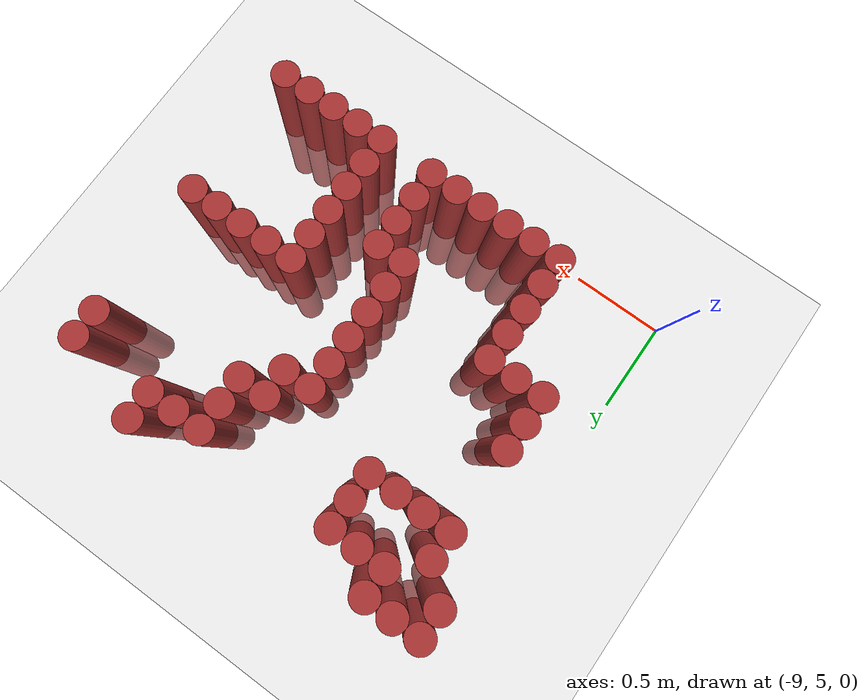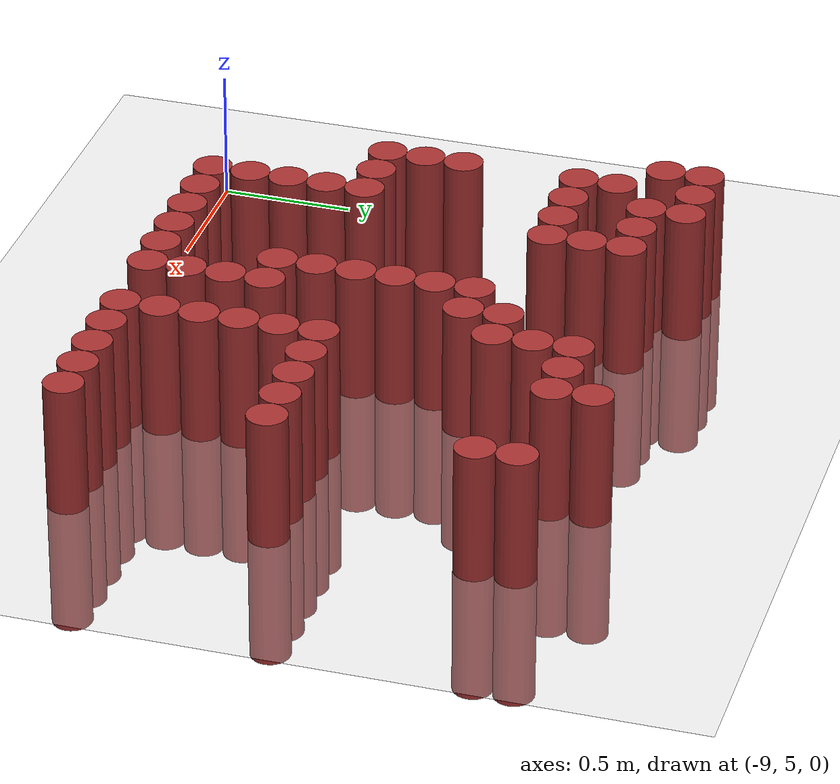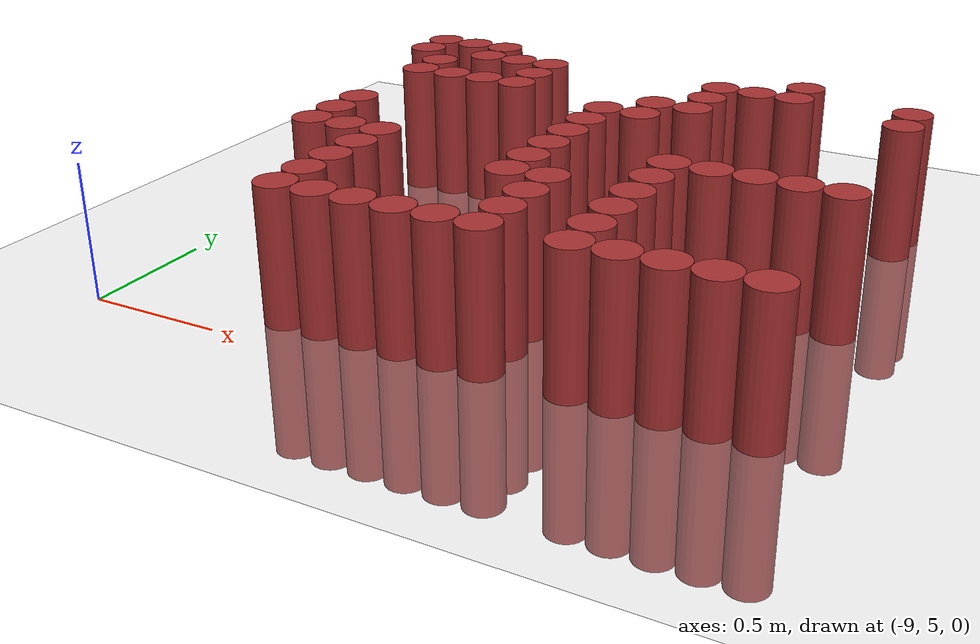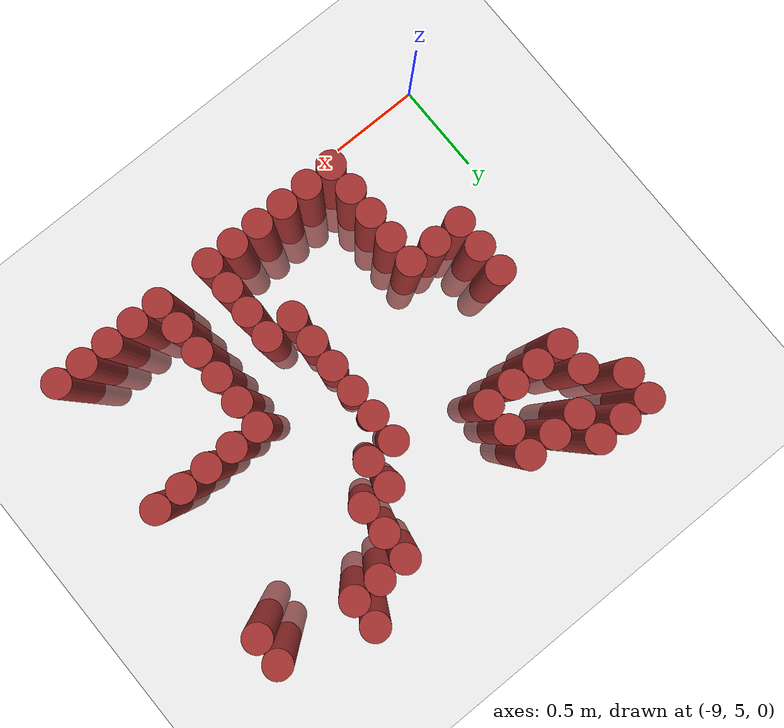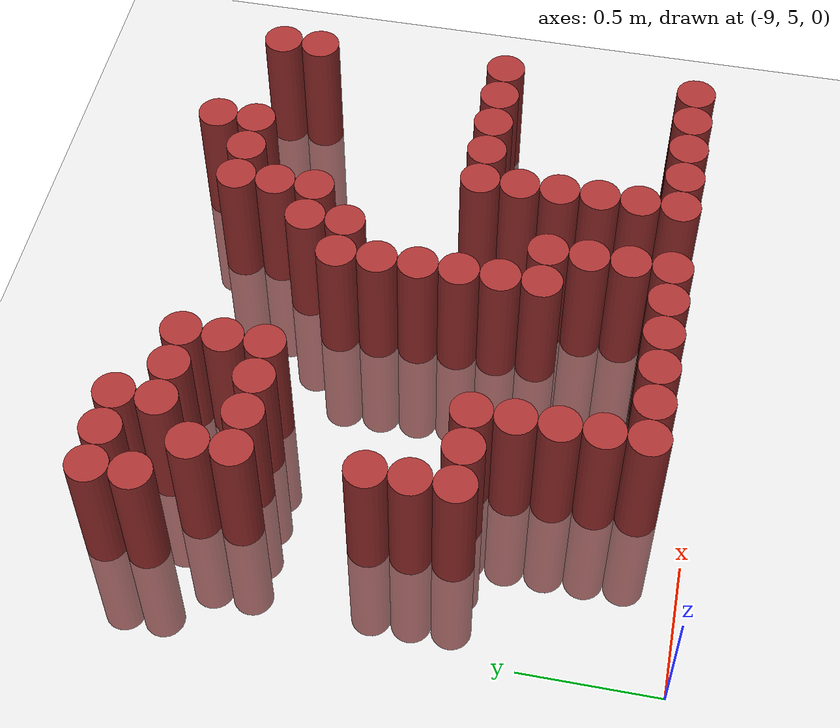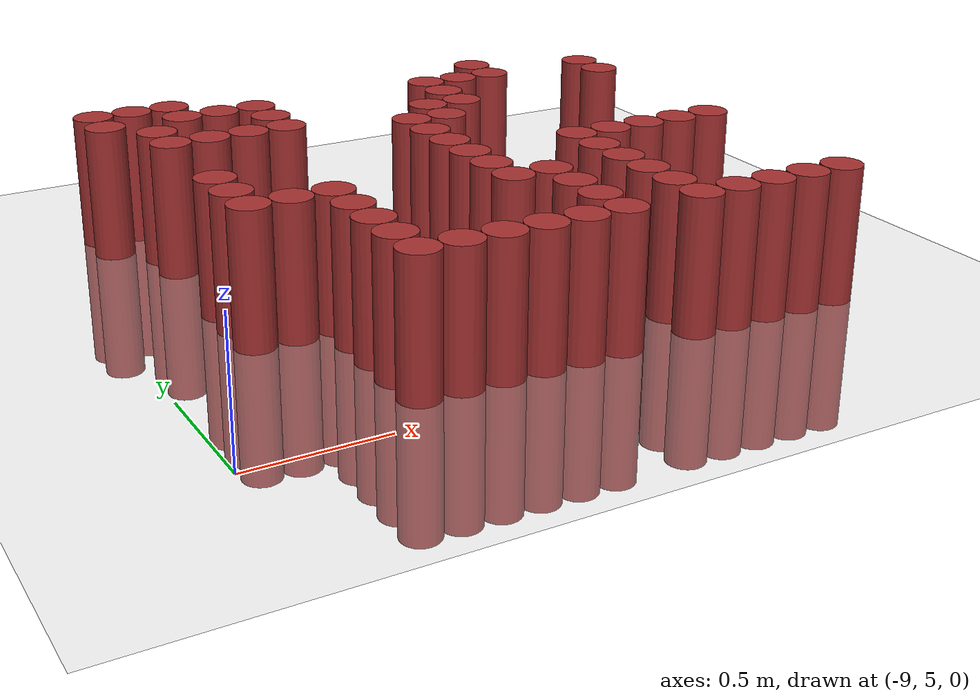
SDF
<sdf version="1.6">
 <world name="default">
  <model name="ground_plane">
   <static>1</static>
   <link name="link">
    <collision name="collision">
     <geometry><plane><normal>0 0 1</normal><size>100 100</size></plane></geometry>
     <surface><friction><ode><mu>100</mu><mu2>50</mu2></ode></friction></surface>
    </collision>
    <visual name="visual">
     <cast_shadows>0</cast_shadows>
     <geometry><plane><normal>0 0 1</normal><size>100 100</size></plane></geometry>
     <material>
      <script><uri>file://media/materials/scripts/gazebo.material</uri><name>Gazebo/Grey</name></script>
     </material>
    </visual>
   </link>
  </model>
  <model name="unit_cylinder_537">
   <static>1</static>
   <pose>-8.775 6.825 0 0 -0 0</pose>
   <link name="link">
    <inertial>
     <mass>1</mass>
     <inertia><ixx>0.145833</ixx><ixy>0</ixy><ixz>0</ixz><iyy>0.145833</iyy><iyz>0</iyz><izz>0.125</izz></inertia>
    </inertial>
    <collision name="collision">
     <geometry><cylinder><radius>0.075</radius><length>1</length></cylinder></geometry>
    </collision>
    <visual name="visual">
     <geometry><cylinder><radius>0.075</radius><length>1</length></cylinder></geometry>
     <material><ambient>0.648 0.192 0.192 1</ambient><diffuse>0.648 0.192 0.192 1</diffuse></material>
     <material>
      <script><name>Gazebo/Grey</name><uri>file://media/materials/scripts/gazebo.material</uri></script>
     </material>
    </visual>
   </link>
  </model>
  <model name="unit_cylinder_538">
   <static>1</static>
   <pose>-8.775 6.975 0 0 -0 0</pose>
   <link name="link">
    <inertial>
     <mass>1</mass>
     <inertia><ixx>0.145833</ixx><ixy>0</ixy><ixz>0</ixz><iyy>0.145833</iyy><iyz>0</iyz><izz>0.125</izz></inertia>
    </inertial>
    <collision name="collision">
     <geometry><cylinder><radius>0.075</radius><length>1</length></cylinder></geometry>
    </collision>
    <visual name="visual">
     <geometry><cylinder><radius>0.075</radius><length>1</length></cylinder></geometry>
     <material><ambient>0.648 0.192 0.192 1</ambient><diffuse>0.648 0.192 0.192 1</diffuse></material>
     <material>
      <script><name>Gazebo/Grey</name><uri>file://media/materials/scripts/gazebo.material</uri></script>
     </material>
    </visual>
   </link>
  </model>
  <model name="unit_cylinder_556">
   <static>1</static>
   <pose>-8.625 5.775 0 0 -0 0</pose>
   <link name="link">
    <inertial>
     <mass>1</mass>
     <inertia><ixx>0.145833</ixx><ixy>0</ixy><ixz>0</ixz><iyy>0.145833</iyy><iyz>0</iyz><izz>0.125</izz></inertia>
    </inertial>
    <collision name="collision">
     <geometry><cylinder><radius>0.075</radius><length>1</length></cylinder></geometry>
    </collision>
    <visual name="visual">
     <geometry><cylinder><radius>0.075</radius><length>1</length></cylinder></geometry>
     <material><ambient>0.648 0.192 0.192 1</ambient><diffuse>0.648 0.192 0.192 1</diffuse></material>
     <material>
      <script><name>Gazebo/Grey</name><uri>file://media/materials/scripts/gazebo.material</uri></script>
     </material>
    </visual>
   </link>
  </model>
  <model name="unit_cylinder_557">
   <static>1</static>
   <pose>-8.625 5.925 0 0 -0 0</pose>
   <link name="link">
    <inertial>
     <mass>1</mass>
     <inertia><ixx>0.145833</ixx><ixy>0</ixy><ixz>0</ixz><iyy>0.145833</iyy><iyz>0</iyz><izz>0.125</izz></inertia>
    </inertial>
    <collision name="collision">
     <geometry><cylinder><radius>0.075</radius><length>1</length></cylinder></geometry>
    </collision>
    <visual name="visual">
     <geometry><cylinder><radius>0.075</radius><length>1</length></cylinder></geometry>
     <material><ambient>0.648 0.192 0.192 1</ambient><diffuse>0.648 0.192 0.192 1</diffuse></material>
     <material>
      <script><name>Gazebo/Grey</name><uri>file://media/materials/scripts/gazebo.material</uri></script>
     </material>
    </visual>
   </link>
  </model>
  <model name="unit_cylinder_558">
   <static>1</static>
   <pose>-8.625 6.075 0 0 -0 0</pose>
   <link name="link">
    <inertial>
     <mass>1</mass>
     <inertia><ixx>0.145833</ixx><ixy>0</ixy><ixz>0</ixz><iyy>0.145833</iyy><iyz>0</iyz><izz>0.125</izz></inertia>
    </inertial>
    <collision name="collision">
     <geometry><cylinder><radius>0.075</radius><length>1</length></cylinder></geometry>
    </collision>
    <visual name="visual">
     <geometry><cylinder><radius>0.075</radius><length>1</length></cylinder></geometry>
     <material><ambient>0.648 0.192 0.192 1</ambient><diffuse>0.648 0.192 0.192 1</diffuse></material>
     <material>
      <script><name>Gazebo/Grey</name><uri>file://media/materials/scripts/gazebo.material</uri></script>
     </material>
    </visual>
   </link>
  </model>
  <model name="unit_cylinder_559">
   <static>1</static>
   <pose>-8.625 6.525 0 0 -0 0</pose>
   <link name="link">
    <inertial>
     <mass>1</mass>
     <inertia><ixx>0.145833</ixx><ixy>0</ixy><ixz>0</ixz><iyy>0.145833</iyy><iyz>0</iyz><izz>0.125</izz></inertia>
    </inertial>
    <collision name="collision">
     <geometry><cylinder><radius>0.075</radius><length>1</length></cylinder></geometry>
    </collision>
    <visual name="visual">
     <geometry><cylinder><radius>0.075</radius><length>1</length></cylinder></geometry>
     <material><ambient>0.648 0.192 0.192 1</ambient><diffuse>0.648 0.192 0.192 1</diffuse></material>
     <material>
      <script><name>Gazebo/Grey</name><uri>file://media/materials/scripts/gazebo.material</uri></script>
     </material>
    </visual>
   </link>
  </model>
  <model name="unit_cylinder_560">
   <static>1</static>
   <pose>-8.625 6.675 0 0 -0 0</pose>
   <link name="link">
    <inertial>
     <mass>1</mass>
     <inertia><ixx>0.145833</ixx><ixy>0</ixy><ixz>0</ixz><iyy>0.145833</iyy><iyz>0</iyz><izz>0.125</izz></inertia>
    </inertial>
    <collision name="collision">
     <geometry><cylinder><radius>0.075</radius><length>1</length></cylinder></geometry>
    </collision>
    <visual name="visual">
     <geometry><cylinder><radius>0.075</radius><length>1</length></cylinder></geometry>
     <material><ambient>0.648 0.192 0.192 1</ambient><diffuse>0.648 0.192 0.192 1</diffuse></material>
     <material>
      <script><name>Gazebo/Grey</name><uri>file://media/materials/scripts/gazebo.material</uri></script>
     </material>
    </visual>
   </link>
  </model>
  <model name="unit_cylinder_561">
   <static>1</static>
   <pose>-8.625 6.975 0 0 -0 0</pose>
   <link name="link">
    <inertial>
     <mass>1</mass>
     <inertia><ixx>0.145833</ixx><ixy>0</ixy><ixz>0</ixz><iyy>0.145833</iyy><iyz>0</iyz><izz>0.125</izz></inertia>
    </inertial>
    <collision name="collision">
     <geometry><cylinder><radius>0.075</radius><length>1</length></cylinder></geometry>
    </collision>
    <visual name="visual">
     <geometry><cylinder><radius>0.075</radius><length>1</length></cylinder></geometry>
     <material><ambient>0.648 0.192 0.192 1</ambient><diffuse>0.648 0.192 0.192 1</diffuse></material>
     <material>
      <script><name>Gazebo/Grey</name><uri>file://media/materials/scripts/gazebo.material</uri></script>
     </material>
    </visual>
   </link>
  </model>
  <model name="unit_cylinder_575">
   <static>1</static>
   <pose>-8.475 5.775 0 0 -0 0</pose>
   <link name="link">
    <inertial>
     <mass>1</mass>
     <inertia><ixx>0.145833</ixx><ixy>0</ixy><ixz>0</ixz><iyy>0.145833</iyy><iyz>0</iyz><izz>0.125</izz></inertia>
    </inertial>
    <collision name="collision">
     <geometry><cylinder><radius>0.075</radius><length>1</length></cylinder></geometry>
    </collision>
    <visual name="visual">
     <geometry><cylinder><radius>0.075</radius><length>1</length></cylinder></geometry>
     <material><ambient>0.648 0.192 0.192 1</ambient><diffuse>0.648 0.192 0.192 1</diffuse></material>
     <material>
      <script><name>Gazebo/Grey</name><uri>file://media/materials/scripts/gazebo.material</uri></script>
     </material>
    </visual>
   </link>
  </model>
  <model name="unit_cylinder_576">
   <static>1</static>
   <pose>-8.475 6.525 0 0 -0 0</pose>
   <link name="link">
    <inertial>
     <mass>1</mass>
     <inertia><ixx>0.145833</ixx><ixy>0</ixy><ixz>0</ixz><iyy>0.145833</iyy><iyz>0</iyz><izz>0.125</izz></inertia>
    </inertial>
    <collision name="collision">
     <geometry><cylinder><radius>0.075</radius><length>1</length></cylinder></geometry>
    </collision>
    <visual name="visual">
     <geometry><cylinder><radius>0.075</radius><length>1</length></cylinder></geometry>
     <material><ambient>0.648 0.192 0.192 1</ambient><diffuse>0.648 0.192 0.192 1</diffuse></material>
     <material>
      <script><name>Gazebo/Grey</name><uri>file://media/materials/scripts/gazebo.material</uri></script>
     </material>
    </visual>
   </link>
  </model>
  <model name="unit_cylinder_577">
   <static>1</static>
   <pose>-8.475 6.825 0 0 -0 0</pose>
   <link name="link">
    <inertial>
     <mass>1</mass>
     <inertia><ixx>0.145833</ixx><ixy>0</ixy><ixz>0</ixz><iyy>0.145833</iyy><iyz>0</iyz><izz>0.125</izz></inertia>
    </inertial>
    <collision name="collision">
     <geometry><cylinder><radius>0.075</radius><length>1</length></cylinder></geometry>
    </collision>
    <visual name="visual">
     <geometry><cylinder><radius>0.075</radius><length>1</length></cylinder></geometry>
     <material><ambient>0.648 0.192 0.192 1</ambient><diffuse>0.648 0.192 0.192 1</diffuse></material>
     <material>
      <script><name>Gazebo/Grey</name><uri>file://media/materials/scripts/gazebo.material</uri></script>
     </material>
    </visual>
   </link>
  </model>
  <model name="unit_cylinder_578">
   <static>1</static>
   <pose>-8.475 6.975 0 0 -0 0</pose>
   <link name="link">
    <inertial>
     <mass>1</mass>
     <inertia><ixx>0.145833</ixx><ixy>0</ixy><ixz>0</ixz><iyy>0.145833</iyy><iyz>0</iyz><izz>0.125</izz></inertia>
    </inertial>
    <collision name="collision">
     <geometry><cylinder><radius>0.075</radius><length>1</length></cylinder></geometry>
    </collision>
    <visual name="visual">
     <geometry><cylinder><radius>0.075</radius><length>1</length></cylinder></geometry>
     <material><ambient>0.648 0.192 0.192 1</ambient><diffuse>0.648 0.192 0.192 1</diffuse></material>
     <material>
      <script><name>Gazebo/Grey</name><uri>file://media/materials/scripts/gazebo.material</uri></script>
     </material>
    </visual>
   </link>
  </model>
  <model name="unit_cylinder_594">
   <static>1</static>
   <pose>-8.325 5.175 0 0 -0 0</pose>
   <link name="link">
    <inertial>
     <mass>1</mass>
     <inertia><ixx>0.145833</ixx><ixy>0</ixy><ixz>0</ixz><iyy>0.145833</iyy><iyz>0</iyz><izz>0.125</izz></inertia>
    </inertial>
    <collision name="collision">
     <geometry><cylinder><radius>0.075</radius><length>1</length></cylinder></geometry>
    </collision>
    <visual name="visual">
     <geometry><cylinder><radius>0.075</radius><length>1</length></cylinder></geometry>
     <material><ambient>0.648 0.192 0.192 1</ambient><diffuse>0.648 0.192 0.192 1</diffuse></material>
     <material>
      <script><name>Gazebo/Grey</name><uri>file://media/materials/scripts/gazebo.material</uri></script>
     </material>
    </visual>
   </link>
  </model>
  <model name="unit_cylinder_595">
   <static>1</static>
   <pose>-8.325 5.325 0 0 -0 0</pose>
   <link name="link">
    <inertial>
     <mass>1</mass>
     <inertia><ixx>0.145833</ixx><ixy>0</ixy><ixz>0</ixz><iyy>0.145833</iyy><iyz>0</iyz><izz>0.125</izz></inertia>
    </inertial>
    <collision name="collision">
     <geometry><cylinder><radius>0.075</radius><length>1</length></cylinder></geometry>
    </collision>
    <visual name="visual">
     <geometry><cylinder><radius>0.075</radius><length>1</length></cylinder></geometry>
     <material><ambient>0.648 0.192 0.192 1</ambient><diffuse>0.648 0.192 0.192 1</diffuse></material>
     <material>
      <script><name>Gazebo/Grey</name><uri>file://media/materials/scripts/gazebo.material</uri></script>
     </material>
    </visual>
   </link>
  </model>
  <model name="unit_cylinder_596">
   <static>1</static>
   <pose>-8.325 5.475 0 0 -0 0</pose>
   <link name="link">
    <inertial>
     <mass>1</mass>
     <inertia><ixx>0.145833</ixx><ixy>0</ixy><ixz>0</ixz><iyy>0.145833</iyy><iyz>0</iyz><izz>0.125</izz></inertia>
    </inertial>
    <collision name="collision">
     <geometry><cylinder><radius>0.075</radius><length>1</length></cylinder></geometry>
    </collision>
    <visual name="visual">
     <geometry><cylinder><radius>0.075</radius><length>1</length></cylinder></geometry>
     <material><ambient>0.648 0.192 0.192 1</ambient><diffuse>0.648 0.192 0.192 1</diffuse></material>
     <material>
      <script><name>Gazebo/Grey</name><uri>file://media/materials/scripts/gazebo.material</uri></script>
     </material>
    </visual>
   </link>
  </model>
  <model name="unit_cylinder_597">
   <static>1</static>
   <pose>-8.325 5.625 0 0 -0 0</pose>
   <link name="link">
    <inertial>
     <mass>1</mass>
     <inertia><ixx>0.145833</ixx><ixy>0</ixy><ixz>0</ixz><iyy>0.145833</iyy><iyz>0</iyz><izz>0.125</izz></inertia>
    </inertial>
    <collision name="collision">
     <geometry><cylinder><radius>0.075</radius><length>1</length></cylinder></geometry>
    </collision>
    <visual name="visual">
     <geometry><cylinder><radius>0.075</radius><length>1</length></cylinder></geometry>
     <material><ambient>0.648 0.192 0.192 1</ambient><diffuse>0.648 0.192 0.192 1</diffuse></material>
     <material>
      <script><name>Gazebo/Grey</name><uri>file://media/materials/scripts/gazebo.material</uri></script>
     </material>
    </visual>
   </link>
  </model>
  <model name="unit_cylinder_598">
   <static>1</static>
   <pose>-8.325 5.775 0 0 -0 0</pose>
   <link name="link">
    <inertial>
     <mass>1</mass>
     <inertia><ixx>0.145833</ixx><ixy>0</ixy><ixz>0</ixz><iyy>0.145833</iyy><iyz>0</iyz><izz>0.125</izz></inertia>
    </inertial>
    <collision name="collision">
     <geometry><cylinder><radius>0.075</radius><length>1</length></cylinder></geometry>
    </collision>
    <visual name="visual">
     <geometry><cylinder><radius>0.075</radius><length>1</length></cylinder></geometry>
     <material><ambient>0.648 0.192 0.192 1</ambient><diffuse>0.648 0.192 0.192 1</diffuse></material>
     <material>
      <script><name>Gazebo/Grey</name><uri>file://media/materials/scripts/gazebo.material</uri></script>
     </material>
    </visual>
   </link>
  </model>
  <model name="unit_cylinder_599">
   <static>1</static>
   <pose>-8.325 6.525 0 0 -0 0</pose>
   <link name="link">
    <inertial>
     <mass>1</mass>
     <inertia><ixx>0.145833</ixx><ixy>0</ixy><ixz>0</ixz><iyy>0.145833</iyy><iyz>0</iyz><izz>0.125</izz></inertia>
    </inertial>
    <collision name="collision">
     <geometry><cylinder><radius>0.075</radius><length>1</length></cylinder></geometry>
    </collision>
    <visual name="visual">
     <geometry><cylinder><radius>0.075</radius><length>1</length></cylinder></geometry>
     <material><ambient>0.648 0.192 0.192 1</ambient><diffuse>0.648 0.192 0.192 1</diffuse></material>
     <material>
      <script><name>Gazebo/Grey</name><uri>file://media/materials/scripts/gazebo.material</uri></script>
     </material>
    </visual>
   </link>
  </model>
  <model name="unit_cylinder_600">
   <static>1</static>
   <pose>-8.325 6.825 0 0 -0 0</pose>
   <link name="link">
    <inertial>
     <mass>1</mass>
     <inertia><ixx>0.145833</ixx><ixy>0</ixy><ixz>0</ixz><iyy>0.145833</iyy><iyz>0</iyz><izz>0.125</izz></inertia>
    </inertial>
    <collision name="collision">
     <geometry><cylinder><radius>0.075</radius><length>1</length></cylinder></geometry>
    </collision>
    <visual name="visual">
     <geometry><cylinder><radius>0.075</radius><length>1</length></cylinder></geometry>
     <material><ambient>0.648 0.192 0.192 1</ambient><diffuse>0.648 0.192 0.192 1</diffuse></material>
     <material>
      <script><name>Gazebo/Grey</name><uri>file://media/materials/scripts/gazebo.material</uri></script>
     </material>
    </visual>
   </link>
  </model>
  <model name="unit_cylinder_616">
   <static>1</static>
   <pose>-8.175 5.175 0 0 -0 0</pose>
   <link name="link">
    <inertial>
     <mass>1</mass>
     <inertia><ixx>0.145833</ixx><ixy>0</ixy><ixz>0</ixz><iyy>0.145833</iyy><iyz>0</iyz><izz>0.125</izz></inertia>
    </inertial>
    <collision name="collision">
     <geometry><cylinder><radius>0.075</radius><length>1</length></cylinder></geometry>
    </collision>
    <visual name="visual">
     <geometry><cylinder><radius>0.075</radius><length>1</length></cylinder></geometry>
     <material><ambient>0.648 0.192 0.192 1</ambient><diffuse>0.648 0.192 0.192 1</diffuse></material>
     <material>
      <script><name>Gazebo/Grey</name><uri>file://media/materials/scripts/gazebo.material</uri></script>
     </material>
    </visual>
   </link>
  </model>
  <model name="unit_cylinder_617">
   <static>1</static>
   <pose>-8.175 6.525 0 0 -0 0</pose>
   <link name="link">
    <inertial>
     <mass>1</mass>
     <inertia><ixx>0.145833</ixx><ixy>0</ixy><ixz>0</ixz><iyy>0.145833</iyy><iyz>0</iyz><izz>0.125</izz></inertia>
    </inertial>
    <collision name="collision">
     <geometry><cylinder><radius>0.075</radius><length>1</length></cylinder></geometry>
    </collision>
    <visual name="visual">
     <geometry><cylinder><radius>0.075</radius><length>1</length></cylinder></geometry>
     <material><ambient>0.648 0.192 0.192 1</ambient><diffuse>0.648 0.192 0.192 1</diffuse></material>
     <material>
      <script><name>Gazebo/Grey</name><uri>file://media/materials/scripts/gazebo.material</uri></script>
     </material>
    </visual>
   </link>
  </model>
  <model name="unit_cylinder_618">
   <static>1</static>
   <pose>-8.175 6.675 0 0 -0 0</pose>
   <link name="link">
    <inertial>
     <mass>1</mass>
     <inertia><ixx>0.145833</ixx><ixy>0</ixy><ixz>0</ixz><iyy>0.145833</iyy><iyz>0</iyz><izz>0.125</izz></inertia>
    </inertial>
    <collision name="collision">
     <geometry><cylinder><radius>0.075</radius><length>1</length></cylinder></geometry>
    </collision>
    <visual name="visual">
     <geometry><cylinder><radius>0.075</radius><length>1</length></cylinder></geometry>
     <material><ambient>0.648 0.192 0.192 1</ambient><diffuse>0.648 0.192 0.192 1</diffuse></material>
     <material>
      <script><name>Gazebo/Grey</name><uri>file://media/materials/scripts/gazebo.material</uri></script>
     </material>
    </visual>
   </link>
  </model>
  <model name="unit_cylinder_619">
   <static>1</static>
   <pose>-8.175 6.825 0 0 -0 0</pose>
   <link name="link">
    <inertial>
     <mass>1</mass>
     <inertia><ixx>0.145833</ixx><ixy>0</ixy><ixz>0</ixz><iyy>0.145833</iyy><iyz>0</iyz><izz>0.125</izz></inertia>
    </inertial>
    <collision name="collision">
     <geometry><cylinder><radius>0.075</radius><length>1</length></cylinder></geometry>
    </collision>
    <visual name="visual">
     <geometry><cylinder><radius>0.075</radius><length>1</length></cylinder></geometry>
     <material><ambient>0.648 0.192 0.192 1</ambient><diffuse>0.648 0.192 0.192 1</diffuse></material>
     <material>
      <script><name>Gazebo/Grey</name><uri>file://media/materials/scripts/gazebo.material</uri></script>
     </material>
    </visual>
   </link>
  </model>
  <model name="unit_cylinder_633">
   <static>1</static>
   <pose>-8.025 5.175 0 0 -0 0</pose>
   <link name="link">
    <inertial>
     <mass>1</mass>
     <inertia><ixx>0.145833</ixx><ixy>0</ixy><ixz>0</ixz><iyy>0.145833</iyy><iyz>0</iyz><izz>0.125</izz></inertia>
    </inertial>
    <collision name="collision">
     <geometry><cylinder><radius>0.075</radius><length>1</length></cylinder></geometry>
    </collision>
    <visual name="visual">
     <geometry><cylinder><radius>0.075</radius><length>1</length></cylinder></geometry>
     <material><ambient>0.648 0.192 0.192 1</ambient><diffuse>0.648 0.192 0.192 1</diffuse></material>
     <material>
      <script><name>Gazebo/Grey</name><uri>file://media/materials/scripts/gazebo.material</uri></script>
     </material>
    </visual>
   </link>
  </model>
  <model name="unit_cylinder_652">
   <static>1</static>
   <pose>-7.875 5.175 0 0 -0 0</pose>
   <link name="link">
    <inertial>
     <mass>1</mass>
     <inertia><ixx>0.145833</ixx><ixy>0</ixy><ixz>0</ixz><iyy>0.145833</iyy><iyz>0</iyz><izz>0.125</izz></inertia>
    </inertial>
    <collision name="collision">
     <geometry><cylinder><radius>0.075</radius><length>1</length></cylinder></geometry>
    </collision>
    <visual name="visual">
     <geometry><cylinder><radius>0.075</radius><length>1</length></cylinder></geometry>
     <material><ambient>0.648 0.192 0.192 1</ambient><diffuse>0.648 0.192 0.192 1</diffuse></material>
     <material>
      <script><name>Gazebo/Grey</name><uri>file://media/materials/scripts/gazebo.material</uri></script>
     </material>
    </visual>
   </link>
  </model>
  <model name="unit_cylinder_663">
   <static>1</static>
   <pose>-7.725 5.175 0 0 -0 0</pose>
   <link name="link">
    <inertial>
     <mass>1</mass>
     <inertia><ixx>0.145833</ixx><ixy>0</ixy><ixz>0</ixz><iyy>0.145833</iyy><iyz>0</iyz><izz>0.125</izz></inertia>
    </inertial>
    <collision name="collision">
     <geometry><cylinder><radius>0.075</radius><length>1</length></cylinder></geometry>
    </collision>
    <visual name="visual">
     <geometry><cylinder><radius>0.075</radius><length>1</length></cylinder></geometry>
     <material><ambient>0.648 0.192 0.192 1</ambient><diffuse>0.648 0.192 0.192 1</diffuse></material>
     <material>
      <script><name>Gazebo/Grey</name><uri>file://media/materials/scripts/gazebo.material</uri></script>
     </material>
    </visual>
   </link>
  </model>
  <model name="unit_cylinder_664">
   <static>1</static>
   <pose>-7.725 5.625 0 0 -0 0</pose>
   <link name="link">
    <inertial>
     <mass>1</mass>
     <inertia><ixx>0.145833</ixx><ixy>0</ixy><ixz>0</ixz><iyy>0.145833</iyy><iyz>0</iyz><izz>0.125</izz></inertia>
    </inertial>
    <collision name="collision">
     <geometry><cylinder><radius>0.075</radius><length>1</length></cylinder></geometry>
    </collision>
    <visual name="visual">
     <geometry><cylinder><radius>0.075</radius><length>1</length></cylinder></geometry>
     <material><ambient>0.648 0.192 0.192 1</ambient><diffuse>0.648 0.192 0.192 1</diffuse></material>
     <material>
      <script><name>Gazebo/Grey</name><uri>file://media/materials/scripts/gazebo.material</uri></script>
     </material>
    </visual>
   </link>
  </model>
  <model name="unit_cylinder_665">
   <static>1</static>
   <pose>-7.725 5.775 0 0 -0 0</pose>
   <link name="link">
    <inertial>
     <mass>1</mass>
     <inertia><ixx>0.145833</ixx><ixy>0</ixy><ixz>0</ixz><iyy>0.145833</iyy><iyz>0</iyz><izz>0.125</izz></inertia>
    </inertial>
    <collision name="collision">
     <geometry><cylinder><radius>0.075</radius><length>1</length></cylinder></geometry>
    </collision>
    <visual name="visual">
     <geometry><cylinder><radius>0.075</radius><length>1</length></cylinder></geometry>
     <material><ambient>0.648 0.192 0.192 1</ambient><diffuse>0.648 0.192 0.192 1</diffuse></material>
     <material>
      <script><name>Gazebo/Grey</name><uri>file://media/materials/scripts/gazebo.material</uri></script>
     </material>
    </visual>
   </link>
  </model>
  <model name="unit_cylinder_666">
   <static>1</static>
   <pose>-7.725 5.925 0 0 -0 0</pose>
   <link name="link">
    <inertial>
     <mass>1</mass>
     <inertia><ixx>0.145833</ixx><ixy>0</ixy><ixz>0</ixz><iyy>0.145833</iyy><iyz>0</iyz><izz>0.125</izz></inertia>
    </inertial>
    <collision name="collision">
     <geometry><cylinder><radius>0.075</radius><length>1</length></cylinder></geometry>
    </collision>
    <visual name="visual">
     <geometry><cylinder><radius>0.075</radius><length>1</length></cylinder></geometry>
     <material><ambient>0.648 0.192 0.192 1</ambient><diffuse>0.648 0.192 0.192 1</diffuse></material>
     <material>
      <script><name>Gazebo/Grey</name><uri>file://media/materials/scripts/gazebo.material</uri></script>
     </material>
    </visual>
   </link>
  </model>
  <model name="unit_cylinder_667">
   <static>1</static>
   <pose>-7.725 6.075 0 0 -0 0</pose>
   <link name="link">
    <inertial>
     <mass>1</mass>
     <inertia><ixx>0.145833</ixx><ixy>0</ixy><ixz>0</ixz><iyy>0.145833</iyy><iyz>0</iyz><izz>0.125</izz></inertia>
    </inertial>
    <collision name="collision">
     <geometry><cylinder><radius>0.075</radius><length>1</length></cylinder></geometry>
    </collision>
    <visual name="visual">
     <geometry><cylinder><radius>0.075</radius><length>1</length></cylinder></geometry>
     <material><ambient>0.648 0.192 0.192 1</ambient><diffuse>0.648 0.192 0.192 1</diffuse></material>
     <material>
      <script><name>Gazebo/Grey</name><uri>file://media/materials/scripts/gazebo.material</uri></script>
     </material>
    </visual>
   </link>
  </model>
  <model name="unit_cylinder_668">
   <static>1</static>
   <pose>-7.725 6.225 0 0 -0 0</pose>
   <link name="link">
    <inertial>
     <mass>1</mass>
     <inertia><ixx>0.145833</ixx><ixy>0</ixy><ixz>0</ixz><iyy>0.145833</iyy><iyz>0</iyz><izz>0.125</izz></inertia>
    </inertial>
    <collision name="collision">
     <geometry><cylinder><radius>0.075</radius><length>1</length></cylinder></geometry>
    </collision>
    <visual name="visual">
     <geometry><cylinder><radius>0.075</radius><length>1</length></cylinder></geometry>
     <material><ambient>0.648 0.192 0.192 1</ambient><diffuse>0.648 0.192 0.192 1</diffuse></material>
     <material>
      <script><name>Gazebo/Grey</name><uri>file://media/materials/scripts/gazebo.material</uri></script>
     </material>
    </visual>
   </link>
  </model>
  <model name="unit_cylinder_669">
   <static>1</static>
   <pose>-7.725 6.375 0 0 -0 0</pose>
   <link name="link">
    <inertial>
     <mass>1</mass>
     <inertia><ixx>0.145833</ixx><ixy>0</ixy><ixz>0</ixz><iyy>0.145833</iyy><iyz>0</iyz><izz>0.125</izz></inertia>
    </inertial>
    <collision name="collision">
     <geometry><cylinder><radius>0.075</radius><length>1</length></cylinder></geometry>
    </collision>
    <visual name="visual">
     <geometry><cylinder><radius>0.075</radius><length>1</length></cylinder></geometry>
     <material><ambient>0.648 0.192 0.192 1</ambient><diffuse>0.648 0.192 0.192 1</diffuse></material>
     <material>
      <script><name>Gazebo/Grey</name><uri>file://media/materials/scripts/gazebo.material</uri></script>
     </material>
    </visual>
   </link>
  </model>
  <model name="unit_cylinder_690">
   <static>1</static>
   <pose>-7.575 5.175 0 0 -0 0</pose>
   <link name="link">
    <inertial>
     <mass>1</mass>
     <inertia><ixx>0.145833</ixx><ixy>0</ixy><ixz>0</ixz><iyy>0.145833</iyy><iyz>0</iyz><izz>0.125</izz></inertia>
    </inertial>
    <collision name="collision">
     <geometry><cylinder><radius>0.075</radius><length>1</length></cylinder></geometry>
    </collision>
    <visual name="visual">
     <geometry><cylinder><radius>0.075</radius><length>1</length></cylinder></geometry>
     <material><ambient>0.648 0.192 0.192 1</ambient><diffuse>0.648 0.192 0.192 1</diffuse></material>
     <material>
      <script><name>Gazebo/Grey</name><uri>file://media/materials/scripts/gazebo.material</uri></script>
     </material>
    </visual>
   </link>
  </model>
  <model name="unit_cylinder_691">
   <static>1</static>
   <pose>-7.575 5.325 0 0 -0 0</pose>
   <link name="link">
    <inertial>
     <mass>1</mass>
     <inertia><ixx>0.145833</ixx><ixy>0</ixy><ixz>0</ixz><iyy>0.145833</iyy><iyz>0</iyz><izz>0.125</izz></inertia>
    </inertial>
    <collision name="collision">
     <geometry><cylinder><radius>0.075</radius><length>1</length></cylinder></geometry>
    </collision>
    <visual name="visual">
     <geometry><cylinder><radius>0.075</radius><length>1</length></cylinder></geometry>
     <material><ambient>0.648 0.192 0.192 1</ambient><diffuse>0.648 0.192 0.192 1</diffuse></material>
     <material>
      <script><name>Gazebo/Grey</name><uri>file://media/materials/scripts/gazebo.material</uri></script>
     </material>
    </visual>
   </link>
  </model>
  <model name="unit_cylinder_692">
   <static>1</static>
   <pose>-7.575 5.475 0 0 -0 0</pose>
   <link name="link">
    <inertial>
     <mass>1</mass>
     <inertia><ixx>0.145833</ixx><ixy>0</ixy><ixz>0</ixz><iyy>0.145833</iyy><iyz>0</iyz><izz>0.125</izz></inertia>
    </inertial>
    <collision name="collision">
     <geometry><cylinder><radius>0.075</radius><length>1</length></cylinder></geometry>
    </collision>
    <visual name="visual">
     <geometry><cylinder><radius>0.075</radius><length>1</length></cylinder></geometry>
     <material><ambient>0.648 0.192 0.192 1</ambient><diffuse>0.648 0.192 0.192 1</diffuse></material>
     <material>
      <script><name>Gazebo/Grey</name><uri>file://media/materials/scripts/gazebo.material</uri></script>
     </material>
    </visual>
   </link>
  </model>
  <model name="unit_cylinder_693">
   <static>1</static>
   <pose>-7.575 5.625 0 0 -0 0</pose>
   <link name="link">
    <inertial>
     <mass>1</mass>
     <inertia><ixx>0.145833</ixx><ixy>0</ixy><ixz>0</ixz><iyy>0.145833</iyy><iyz>0</iyz><izz>0.125</izz></inertia>
    </inertial>
    <collision name="collision">
     <geometry><cylinder><radius>0.075</radius><length>1</length></cylinder></geometry>
    </collision>
    <visual name="visual">
     <geometry><cylinder><radius>0.075</radius><length>1</length></cylinder></geometry>
     <material><ambient>0.648 0.192 0.192 1</ambient><diffuse>0.648 0.192 0.192 1</diffuse></material>
     <material>
      <script><name>Gazebo/Grey</name><uri>file://media/materials/scripts/gazebo.material</uri></script>
     </material>
    </visual>
   </link>
  </model>
  <model name="unit_cylinder_694">
   <static>1</static>
   <pose>-7.575 6.375 0 0 -0 0</pose>
   <link name="link">
    <inertial>
     <mass>1</mass>
     <inertia><ixx>0.145833</ixx><ixy>0</ixy><ixz>0</ixz><iyy>0.145833</iyy><iyz>0</iyz><izz>0.125</izz></inertia>
    </inertial>
    <collision name="collision">
     <geometry><cylinder><radius>0.075</radius><length>1</length></cylinder></geometry>
    </collision>
    <visual name="visual">
     <geometry><cylinder><radius>0.075</radius><length>1</length></cylinder></geometry>
     <material><ambient>0.648 0.192 0.192 1</ambient><diffuse>0.648 0.192 0.192 1</diffuse></material>
     <material>
      <script><name>Gazebo/Grey</name><uri>file://media/materials/scripts/gazebo.material</uri></script>
     </material>
    </visual>
   </link>
  </model>
  <model name="unit_cylinder_695">
   <static>1</static>
   <pose>-7.575 6.525 0 0 -0 0</pose>
   <link name="link">
    <inertial>
     <mass>1</mass>
     <inertia><ixx>0.145833</ixx><ixy>0</ixy><ixz>0</ixz><iyy>0.145833</iyy><iyz>0</iyz><izz>0.125</izz></inertia>
    </inertial>
    <collision name="collision">
     <geometry><cylinder><radius>0.075</radius><length>1</length></cylinder></geometry>
    </collision>
    <visual name="visual">
     <geometry><cylinder><radius>0.075</radius><length>1</length></cylinder></geometry>
     <material><ambient>0.648 0.192 0.192 1</ambient><diffuse>0.648 0.192 0.192 1</diffuse></material>
     <material>
      <script><name>Gazebo/Grey</name><uri>file://media/materials/scripts/gazebo.material</uri></script>
     </material>
    </visual>
   </link>
  </model>
  <model name="unit_cylinder_717">
   <static>1</static>
   <pose>-7.425 6.525 0 0 -0 0</pose>
   <link name="link">
    <inertial>
     <mass>1</mass>
     <inertia><ixx>0.145833</ixx><ixy>0</ixy><ixz>0</ixz><iyy>0.145833</iyy><iyz>0</iyz><izz>0.125</izz></inertia>
    </inertial>
    <collision name="collision">
     <geometry><cylinder><radius>0.075</radius><length>1</length></cylinder></geometry>
    </collision>
    <visual name="visual">
     <geometry><cylinder><radius>0.075</radius><length>1</length></cylinder></geometry>
     <material><ambient>0.648 0.192 0.192 1</ambient><diffuse>0.648 0.192 0.192 1</diffuse></material>
     <material>
      <script><name>Gazebo/Grey</name><uri>file://media/materials/scripts/gazebo.material</uri></script>
     </material>
    </visual>
   </link>
  </model>
  <model name="unit_cylinder_718">
   <static>1</static>
   <pose>-7.425 6.675 0 0 -0 0</pose>
   <link name="link">
    <inertial>
     <mass>1</mass>
     <inertia><ixx>0.145833</ixx><ixy>0</ixy><ixz>0</ixz><iyy>0.145833</iyy><iyz>0</iyz><izz>0.125</izz></inertia>
    </inertial>
    <collision name="collision">
     <geometry><cylinder><radius>0.075</radius><length>1</length></cylinder></geometry>
    </collision>
    <visual name="visual">
     <geometry><cylinder><radius>0.075</radius><length>1</length></cylinder></geometry>
     <material><ambient>0.648 0.192 0.192 1</ambient><diffuse>0.648 0.192 0.192 1</diffuse></material>
     <material>
      <script><name>Gazebo/Grey</name><uri>file://media/materials/scripts/gazebo.material</uri></script>
     </material>
    </visual>
   </link>
  </model>
  <model name="unit_cylinder_719">
   <static>1</static>
   <pose>-7.425 6.825 0 0 -0 0</pose>
   <link name="link">
    <inertial>
     <mass>1</mass>
     <inertia><ixx>0.145833</ixx><ixy>0</ixy><ixz>0</ixz><iyy>0.145833</iyy><iyz>0</iyz><izz>0.125</izz></inertia>
    </inertial>
    <collision name="collision">
     <geometry><cylinder><radius>0.075</radius><length>1</length></cylinder></geometry>
    </collision>
    <visual name="visual">
     <geometry><cylinder><radius>0.075</radius><length>1</length></cylinder></geometry>
     <material><ambient>0.648 0.192 0.192 1</ambient><diffuse>0.648 0.192 0.192 1</diffuse></material>
     <material>
      <script><name>Gazebo/Grey</name><uri>file://media/materials/scripts/gazebo.material</uri></script>
     </material>
    </visual>
   </link>
  </model>
  <model name="unit_cylinder_740">
   <static>1</static>
   <pose>-7.275 5.175 0 0 -0 0</pose>
   <link name="link">
    <inertial>
     <mass>1</mass>
     <inertia><ixx>0.145833</ixx><ixy>0</ixy><ixz>0</ixz><iyy>0.145833</iyy><iyz>0</iyz><izz>0.125</izz></inertia>
    </inertial>
    <collision name="collision">
     <geometry><cylinder><radius>0.075</radius><length>1</length></cylinder></geometry>
    </collision>
    <visual name="visual">
     <geometry><cylinder><radius>0.075</radius><length>1</length></cylinder></geometry>
     <material><ambient>0.648 0.192 0.192 1</ambient><diffuse>0.648 0.192 0.192 1</diffuse></material>
     <material>
      <script><name>Gazebo/Grey</name><uri>file://media/materials/scripts/gazebo.material</uri></script>
     </material>
    </visual>
   </link>
  </model>
  <model name="unit_cylinder_741">
   <static>1</static>
   <pose>-7.275 5.325 0 0 -0 0</pose>
   <link name="link">
    <inertial>
     <mass>1</mass>
     <inertia><ixx>0.145833</ixx><ixy>0</ixy><ixz>0</ixz><iyy>0.145833</iyy><iyz>0</iyz><izz>0.125</izz></inertia>
    </inertial>
    <collision name="collision">
     <geometry><cylinder><radius>0.075</radius><length>1</length></cylinder></geometry>
    </collision>
    <visual name="visual">
     <geometry><cylinder><radius>0.075</radius><length>1</length></cylinder></geometry>
     <material><ambient>0.648 0.192 0.192 1</ambient><diffuse>0.648 0.192 0.192 1</diffuse></material>
     <material>
      <script><name>Gazebo/Grey</name><uri>file://media/materials/scripts/gazebo.material</uri></script>
     </material>
    </visual>
   </link>
  </model>
  <model name="unit_cylinder_742">
   <static>1</static>
   <pose>-7.275 5.475 0 0 -0 0</pose>
   <link name="link">
    <inertial>
     <mass>1</mass>
     <inertia><ixx>0.145833</ixx><ixy>0</ixy><ixz>0</ixz><iyy>0.145833</iyy><iyz>0</iyz><izz>0.125</izz></inertia>
    </inertial>
    <collision name="collision">
     <geometry><cylinder><radius>0.075</radius><length>1</length></cylinder></geometry>
    </collision>
    <visual name="visual">
     <geometry><cylinder><radius>0.075</radius><length>1</length></cylinder></geometry>
     <material><ambient>0.648 0.192 0.192 1</ambient><diffuse>0.648 0.192 0.192 1</diffuse></material>
     <material>
      <script><name>Gazebo/Grey</name><uri>file://media/materials/scripts/gazebo.material</uri></script>
     </material>
    </visual>
   </link>
  </model>
  <model name="unit_cylinder_743">
   <static>1</static>
   <pose>-7.275 5.625 0 0 -0 0</pose>
   <link name="link">
    <inertial>
     <mass>1</mass>
     <inertia><ixx>0.145833</ixx><ixy>0</ixy><ixz>0</ixz><iyy>0.145833</iyy><iyz>0</iyz><izz>0.125</izz></inertia>
    </inertial>
    <collision name="collision">
     <geometry><cylinder><radius>0.075</radius><length>1</length></cylinder></geometry>
    </collision>
    <visual name="visual">
     <geometry><cylinder><radius>0.075</radius><length>1</length></cylinder></geometry>
     <material><ambient>0.648 0.192 0.192 1</ambient><diffuse>0.648 0.192 0.192 1</diffuse></material>
     <material>
      <script><name>Gazebo/Grey</name><uri>file://media/materials/scripts/gazebo.material</uri></script>
     </material>
    </visual>
   </link>
  </model>
  <model name="unit_cylinder_744">
   <static>1</static>
   <pose>-7.275 5.775 0 0 -0 0</pose>
   <link name="link">
    <inertial>
     <mass>1</mass>
     <inertia><ixx>0.145833</ixx><ixy>0</ixy><ixz>0</ixz><iyy>0.145833</iyy><iyz>0</iyz><izz>0.125</izz></inertia>
    </inertial>
    <collision name="collision">
     <geometry><cylinder><radius>0.075</radius><length>1</length></cylinder></geometry>
    </collision>
    <visual name="visual">
     <geometry><cylinder><radius>0.075</radius><length>1</length></cylinder></geometry>
     <material><ambient>0.648 0.192 0.192 1</ambient><diffuse>0.648 0.192 0.192 1</diffuse></material>
     <material>
      <script><name>Gazebo/Grey</name><uri>file://media/materials/scripts/gazebo.material</uri></script>
     </material>
    </visual>
   </link>
  </model>
  <model name="unit_cylinder_745">
   <static>1</static>
   <pose>-7.275 5.925 0 0 -0 0</pose>
   <link name="link">
    <inertial>
     <mass>1</mass>
     <inertia><ixx>0.145833</ixx><ixy>0</ixy><ixz>0</ixz><iyy>0.145833</iyy><iyz>0</iyz><izz>0.125</izz></inertia>
    </inertial>
    <collision name="collision">
     <geometry><cylinder><radius>0.075</radius><length>1</length></cylinder></geometry>
    </collision>
    <visual name="visual">
     <geometry><cylinder><radius>0.075</radius><length>1</length></cylinder></geometry>
     <material><ambient>0.648 0.192 0.192 1</ambient><diffuse>0.648 0.192 0.192 1</diffuse></material>
     <material>
      <script><name>Gazebo/Grey</name><uri>file://media/materials/scripts/gazebo.material</uri></script>
     </material>
    </visual>
   </link>
  </model>
  <model name="unit_cylinder_746">
   <static>1</static>
   <pose>-7.275 6.825 0 0 -0 0</pose>
   <link name="link">
    <inertial>
     <mass>1</mass>
     <inertia><ixx>0.145833</ixx><ixy>0</ixy><ixz>0</ixz><iyy>0.145833</iyy><iyz>0</iyz><izz>0.125</izz></inertia>
    </inertial>
    <collision name="collision">
     <geometry><cylinder><radius>0.075</radius><length>1</length></cylinder></geometry>
    </collision>
    <visual name="visual">
     <geometry><cylinder><radius>0.075</radius><length>1</length></cylinder></geometry>
     <material><ambient>0.648 0.192 0.192 1</ambient><diffuse>0.648 0.192 0.192 1</diffuse></material>
     <material>
      <script><name>Gazebo/Grey</name><uri>file://media/materials/scripts/gazebo.material</uri></script>
     </material>
    </visual>
   </link>
  </model>
  <model name="unit_cylinder_761">
   <static>1</static>
   <pose>-7.125 5.175 0 0 -0 0</pose>
   <link name="link">
    <inertial>
     <mass>1</mass>
     <inertia><ixx>0.145833</ixx><ixy>0</ixy><ixz>0</ixz><iyy>0.145833</iyy><iyz>0</iyz><izz>0.125</izz></inertia>
    </inertial>
    <collision name="collision">
     <geometry><cylinder><radius>0.075</radius><length>1</length></cylinder></geometry>
    </collision>
    <visual name="visual">
     <geometry><cylinder><radius>0.075</radius><length>1</length></cylinder></geometry>
     <material><ambient>0.648 0.192 0.192 1</ambient><diffuse>0.648 0.192 0.192 1</diffuse></material>
     <material>
      <script><name>Gazebo/Grey</name><uri>file://media/materials/scripts/gazebo.material</uri></script>
     </material>
    </visual>
   </link>
  </model>
  <model name="unit_cylinder_762">
   <static>1</static>
   <pose>-7.125 5.925 0 0 -0 0</pose>
   <link name="link">
    <inertial>
     <mass>1</mass>
     <inertia><ixx>0.145833</ixx><ixy>0</ixy><ixz>0</ixz><iyy>0.145833</iyy><iyz>0</iyz><izz>0.125</izz></inertia>
    </inertial>
    <collision name="collision">
     <geometry><cylinder><radius>0.075</radius><length>1</length></cylinder></geometry>
    </collision>
    <visual name="visual">
     <geometry><cylinder><radius>0.075</radius><length>1</length></cylinder></geometry>
     <material><ambient>0.648 0.192 0.192 1</ambient><diffuse>0.648 0.192 0.192 1</diffuse></material>
     <material>
      <script><name>Gazebo/Grey</name><uri>file://media/materials/scripts/gazebo.material</uri></script>
     </material>
    </visual>
   </link>
  </model>
  <model name="unit_cylinder_763">
   <static>1</static>
   <pose>-7.125 6.825 0 0 -0 0</pose>
   <link name="link">
    <inertial>
     <mass>1</mass>
     <inertia><ixx>0.145833</ixx><ixy>0</ixy><ixz>0</ixz><iyy>0.145833</iyy><iyz>0</iyz><izz>0.125</izz></inertia>
    </inertial>
    <collision name="collision">
     <geometry><cylinder><radius>0.075</radius><length>1</length></cylinder></geometry>
    </collision>
    <visual name="visual">
     <geometry><cylinder><radius>0.075</radius><length>1</length></cylinder></geometry>
     <material><ambient>0.648 0.192 0.192 1</ambient><diffuse>0.648 0.192 0.192 1</diffuse></material>
     <material>
      <script><name>Gazebo/Grey</name><uri>file://media/materials/scripts/gazebo.material</uri></script>
     </material>
    </visual>
   </link>
  </model>
  <model name="unit_cylinder_764">
   <static>1</static>
   <pose>-7.125 6.975 0 0 -0 0</pose>
   <link name="link">
    <inertial>
     <mass>1</mass>
     <inertia><ixx>0.145833</ixx><ixy>0</ixy><ixz>0</ixz><iyy>0.145833</iyy><iyz>0</iyz><izz>0.125</izz></inertia>
    </inertial>
    <collision name="collision">
     <geometry><cylinder><radius>0.075</radius><length>1</length></cylinder></geometry>
    </collision>
    <visual name="visual">
     <geometry><cylinder><radius>0.075</radius><length>1</length></cylinder></geometry>
     <material><ambient>0.648 0.192 0.192 1</ambient><diffuse>0.648 0.192 0.192 1</diffuse></material>
     <material>
      <script><name>Gazebo/Grey</name><uri>file://media/materials/scripts/gazebo.material</uri></script>
     </material>
    </visual>
   </link>
  </model>
  <model name="unit_cylinder_781">
   <static>1</static>
   <pose>-6.975 5.175 0 0 -0 0</pose>
   <link name="link">
    <inertial>
     <mass>1</mass>
     <inertia><ixx>0.145833</ixx><ixy>0</ixy><ixz>0</ixz><iyy>0.145833</iyy><iyz>0</iyz><izz>0.125</izz></inertia>
    </inertial>
    <collision name="collision">
     <geometry><cylinder><radius>0.075</radius><length>1</length></cylinder></geometry>
    </collision>
    <visual name="visual">
     <geometry><cylinder><radius>0.075</radius><length>1</length></cylinder></geometry>
     <material><ambient>0.648 0.192 0.192 1</ambient><diffuse>0.648 0.192 0.192 1</diffuse></material>
     <material>
      <script><name>Gazebo/Grey</name><uri>file://media/materials/scripts/gazebo.material</uri></script>
     </material>
    </visual>
   </link>
  </model>
  <model name="unit_cylinder_782">
   <static>1</static>
   <pose>-6.975 5.925 0 0 -0 0</pose>
   <link name="link">
    <inertial>
     <mass>1</mass>
     <inertia><ixx>0.145833</ixx><ixy>0</ixy><ixz>0</ixz><iyy>0.145833</iyy><iyz>0</iyz><izz>0.125</izz></inertia>
    </inertial>
    <collision name="collision">
     <geometry><cylinder><radius>0.075</radius><length>1</length></cylinder></geometry>
    </collision>
    <visual name="visual">
     <geometry><cylinder><radius>0.075</radius><length>1</length></cylinder></geometry>
     <material><ambient>0.648 0.192 0.192 1</ambient><diffuse>0.648 0.192 0.192 1</diffuse></material>
     <material>
      <script><name>Gazebo/Grey</name><uri>file://media/materials/scripts/gazebo.material</uri></script>
     </material>
    </visual>
   </link>
  </model>
  <model name="unit_cylinder_795">
   <static>1</static>
   <pose>-6.825 5.175 0 0 -0 0</pose>
   <link name="link">
    <inertial>
     <mass>1</mass>
     <inertia><ixx>0.145833</ixx><ixy>0</ixy><ixz>0</ixz><iyy>0.145833</iyy><iyz>0</iyz><izz>0.125</izz></inertia>
    </inertial>
    <collision name="collision">
     <geometry><cylinder><radius>0.075</radius><length>1</length></cylinder></geometry>
    </collision>
    <visual name="visual">
     <geometry><cylinder><radius>0.075</radius><length>1</length></cylinder></geometry>
     <material><ambient>0.648 0.192 0.192 1</ambient><diffuse>0.648 0.192 0.192 1</diffuse></material>
     <material>
      <script><name>Gazebo/Grey</name><uri>file://media/materials/scripts/gazebo.material</uri></script>
     </material>
    </visual>
   </link>
  </model>
  <model name="unit_cylinder_796">
   <static>1</static>
   <pose>-6.825 5.925 0 0 -0 0</pose>
   <link name="link">
    <inertial>
     <mass>1</mass>
     <inertia><ixx>0.145833</ixx><ixy>0</ixy><ixz>0</ixz><iyy>0.145833</iyy><iyz>0</iyz><izz>0.125</izz></inertia>
    </inertial>
    <collision name="collision">
     <geometry><cylinder><radius>0.075</radius><length>1</length></cylinder></geometry>
    </collision>
    <visual name="visual">
     <geometry><cylinder><radius>0.075</radius><length>1</length></cylinder></geometry>
     <material><ambient>0.648 0.192 0.192 1</ambient><diffuse>0.648 0.192 0.192 1</diffuse></material>
     <material>
      <script><name>Gazebo/Grey</name><uri>file://media/materials/scripts/gazebo.material</uri></script>
     </material>
    </visual>
   </link>
  </model>
  <model name="unit_cylinder_809">
   <static>1</static>
   <pose>-6.675 5.175 0 0 -0 0</pose>
   <link name="link">
    <inertial>
     <mass>1</mass>
     <inertia><ixx>0.145833</ixx><ixy>0</ixy><ixz>0</ixz><iyy>0.145833</iyy><iyz>0</iyz><izz>0.125</izz></inertia>
    </inertial>
    <collision name="collision">
     <geometry><cylinder><radius>0.075</radius><length>1</length></cylinder></geometry>
    </collision>
    <visual name="visual">
     <geometry><cylinder><radius>0.075</radius><length>1</length></cylinder></geometry>
     <material><ambient>0.648 0.192 0.192 1</ambient><diffuse>0.648 0.192 0.192 1</diffuse></material>
     <material>
      <script><name>Gazebo/Grey</name><uri>file://media/materials/scripts/gazebo.material</uri></script>
     </material>
    </visual>
   </link>
  </model>
  <model name="unit_cylinder_810">
   <static>1</static>
   <pose>-6.675 5.925 0 0 -0 0</pose>
   <link name="link">
    <inertial>
     <mass>1</mass>
     <inertia><ixx>0.145833</ixx><ixy>0</ixy><ixz>0</ixz><iyy>0.145833</iyy><iyz>0</iyz><izz>0.125</izz></inertia>
    </inertial>
    <collision name="collision">
     <geometry><cylinder><radius>0.075</radius><length>1</length></cylinder></geometry>
    </collision>
    <visual name="visual">
     <geometry><cylinder><radius>0.075</radius><length>1</length></cylinder></geometry>
     <material><ambient>0.648 0.192 0.192 1</ambient><diffuse>0.648 0.192 0.192 1</diffuse></material>
     <material>
      <script><name>Gazebo/Grey</name><uri>file://media/materials/scripts/gazebo.material</uri></script>
     </material>
    </visual>
   </link>
  </model>
  <model name="unit_cylinder_811">
   <static>1</static>
   <pose>-6.675 6.675 0 0 -0 0</pose>
   <link name="link">
    <inertial>
     <mass>1</mass>
     <inertia><ixx>0.145833</ixx><ixy>0</ixy><ixz>0</ixz><iyy>0.145833</iyy><iyz>0</iyz><izz>0.125</izz></inertia>
    </inertial>
    <collision name="collision">
     <geometry><cylinder><radius>0.075</radius><length>1</length></cylinder></geometry>
    </collision>
    <visual name="visual">
     <geometry><cylinder><radius>0.075</radius><length>1</length></cylinder></geometry>
     <material><ambient>0.648 0.192 0.192 1</ambient><diffuse>0.648 0.192 0.192 1</diffuse></material>
     <material>
      <script><name>Gazebo/Grey</name><uri>file://media/materials/scripts/gazebo.material</uri></script>
     </material>
    </visual>
   </link>
  </model>
  <model name="unit_cylinder_812">
   <static>1</static>
   <pose>-6.675 6.825 0 0 -0 0</pose>
   <link name="link">
    <inertial>
     <mass>1</mass>
     <inertia><ixx>0.145833</ixx><ixy>0</ixy><ixz>0</ixz><iyy>0.145833</iyy><iyz>0</iyz><izz>0.125</izz></inertia>
    </inertial>
    <collision name="collision">
     <geometry><cylinder><radius>0.075</radius><length>1</length></cylinder></geometry>
    </collision>
    <visual name="visual">
     <geometry><cylinder><radius>0.075</radius><length>1</length></cylinder></geometry>
     <material><ambient>0.648 0.192 0.192 1</ambient><diffuse>0.648 0.192 0.192 1</diffuse></material>
     <material>
      <script><name>Gazebo/Grey</name><uri>file://media/materials/scripts/gazebo.material</uri></script>
     </material>
    </visual>
   </link>
  </model>
 </world>
</sdf>
